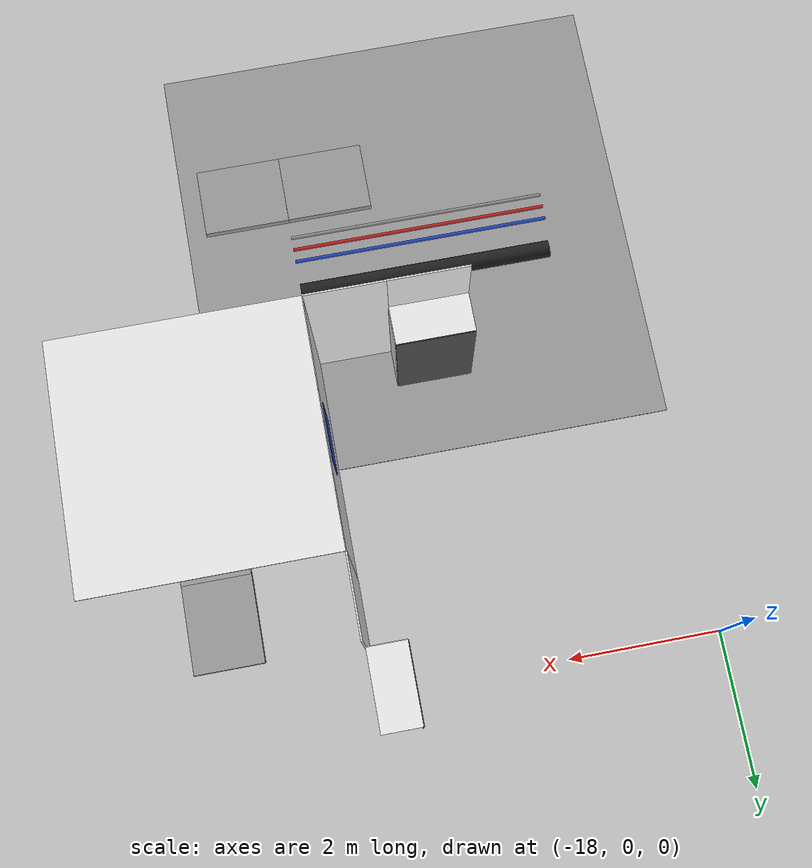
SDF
<sdf version="1.6">
 <world name="default">
  <model name="ceiling_1_-4_0_1_3">
   <pose>-12.0 -1.0 2.55 0.0 0.0 3.14</pose>
   <link name="link_1">
    <visual name="visual">
     <geometry><box><size>0.8 1 0.1</size></box></geometry>
     <material>
      <script><uri>file://media/materials/scripts/gazebo.material</uri><name>Gazebo/Grey</name></script>
     </material>
    </visual>
    <collision name="collision"><geometry><box><size>0.8 1 0.1</size></box></geometry></collision>
   </link>
   <static>1</static>
  </model>
  <model name="wall_front_front_right_-4_0_0_3">
   <static>1</static>
   <pose>-13.5 -1.0 1.5 0.0 0.0 1.57</pose>
   <link name="link">
    <collision name="collision"><geometry><box><size>1.0 0.02 3.0</size></box></geometry></collision>
    <visual name="visual">
     <material>
      <script><name>Gazebo/White</name><uri>file://media/materials/scripts/gazebo.material</uri></script>
     </material>
     <geometry><box><size>1.0 0.02 3.0</size></box></geometry>
    </visual>
   </link>
  </model>
  <model name="wall_front_inside_back_-4_0_0_3">
   <static>1</static>
   <pose>-14.0 0.0 1.0 0.0 0.0 1.57</pose>
   <link name="link">
    <collision name="collision"><geometry><box><size>1 0.02 2</size></box></geometry></collision>
    <visual name="visual">
     <material>
      <script><name>Gazebo/DarkGrey</name><uri>file://media/materials/scripts/gazebo.material</uri></script>
     </material>
     <geometry><box><size>1 0.02 2</size></box></geometry>
    </visual>
   </link>
  </model>
  <model name="wall_front_inside_left_-4_0_0_3">
   <static>1</static>
   <pose>-13.75 -0.5 1.0 0.0 0.0 3.14</pose>
   <link name="link">
    <collision name="collision"><geometry><box><size>0.5 0.02 2</size></box></geometry></collision>
    <visual name="visual">
     <material>
      <script><name>Gazebo/White</name><uri>file://media/materials/scripts/gazebo.material</uri></script>
     </material>
     <geometry><box><size>0.5 0.02 2</size></box></geometry>
    </visual>
   </link>
  </model>
  <model name="wall_front_inside_top_-4_0_0_3">
   <static>1</static>
   <pose>-13.75 0.0 2.0 1.57 0.0 1.57</pose>
   <link name="link">
    <collision name="collision"><geometry><box><size>1 0.02 0.5</size></box></geometry></collision>
    <visual name="visual">
     <material>
      <script><name>Gazebo/White</name><uri>file://media/materials/scripts/gazebo.material</uri></script>
     </material>
     <geometry><box><size>1 0.02 0.5</size></box></geometry>
    </visual>
   </link>
  </model>
  <model name="wall_right_-4_-1_0_1">
   <static>1</static>
   <pose>-13.5 -3.0 1.5 0.0 0.0 4.71</pose>
   <link name="link">
    <collision name="collision"><geometry><box><size>3.0 0.02 3.0</size></box></geometry></collision>
    <visual name="visual">
     <material>
      <script><name>Gazebo/White</name><uri>file://media/materials/scripts/gazebo.material</uri></script>
     </material>
     <geometry><box><size>3.0 0.02 3.0</size></box></geometry>
    </visual>
   </link>
  </model>
  <model name="wall_top_-4_-1_0_1">
   <static>1</static>
   <pose>-12.0 -3.0 3.0 1.57 0.0 3.14</pose>
   <link name="link">
    <collision name="collision"><geometry><box><size>3.0 0.02 3.0</size></box></geometry></collision>
    <visual name="visual">
     <material>
      <script><name>Gazebo/White</name><uri>file://media/materials/scripts/gazebo.material</uri></script>
     </material>
     <geometry><box><size>3.0 0.02 3.0</size></box></geometry>
    </visual>
   </link>
  </model>
  <model name="ceiling_1_-4_-1_0_1">
   <pose>-12.0 -3.0 2.55 0.0 0.0 3.14</pose>
   <link name="link_1">
    <visual name="visual">
     <geometry><box><size>0.8 1 0.1</size></box></geometry>
     <material>
      <script><uri>file://media/materials/scripts/gazebo.material</uri><name>Gazebo/Grey</name></script>
     </material>
    </visual>
    <collision name="collision"><geometry><box><size>0.8 1 0.1</size></box></geometry></collision>
   </link>
   <static>1</static>
  </model>
  <model name="ceiling_1_-4_-1_1_1">
   <pose>-12.0 -2.0 2.55 0.0 0.0 3.14</pose>
   <link name="link_1">
    <visual name="visual">
     <geometry><box><size>0.8 1 0.1</size></box></geometry>
     <material>
      <script><uri>file://media/materials/scripts/gazebo.material</uri><name>Gazebo/Grey</name></script>
     </material>
    </visual>
    <collision name="collision"><geometry><box><size>0.8 1 0.1</size></box></geometry></collision>
   </link>
   <static>1</static>
  </model>
  <model name="panel_-4_-1_0_1">
   <static>1</static>
   <pose>-13.5 -3.0 1.95 0.0 0.0 3.14</pose>
   <link name="link">
    <collision name="collision"><geometry><box><size>0.04 0.7 1</size></box></geometry></collision>
    <visual name="visual">
     <material>
      <script><name>Gazebo/Blue</name><uri>file://media/materials/scripts/gazebo.material</uri></script>
     </material>
     <geometry><box><size>0.04 0.7 1</size></box></geometry>
    </visual>
   </link>
  </model>
  <model name="ceiling_1_-4_-2_1_2">
   <pose>-13.0 -6.0 2.55 0.0 0.0 4.71</pose>
   <link name="link_1">
    <visual name="visual">
     <geometry><box><size>0.8 1 0.1</size></box></geometry>
     <material>
      <script><uri>file://media/materials/scripts/gazebo.material</uri><name>Gazebo/Grey</name></script>
     </material>
    </visual>
    <collision name="collision"><geometry><box><size>0.8 1 0.1</size></box></geometry></collision>
   </link>
   <static>1</static>
  </model>
  <model name="ceiling_1_-5_-2_1_1">
   <pose>-14.0 -6.0 2.55 0.0 0.0 1.57</pose>
   <link name="link_1">
    <visual name="visual">
     <geometry><box><size>0.8 1 0.1</size></box></geometry>
     <material>
      <script><uri>file://media/materials/scripts/gazebo.material</uri><name>Gazebo/Grey</name></script>
     </material>
    </visual>
    <collision name="collision"><geometry><box><size>0.8 1 0.1</size></box></geometry></collision>
   </link>
   <static>1</static>
  </model>
  <model name="black_pipe_right_-5_-2_0_1">
   <static>1</static>
   <pose>-15.0 -6.0 2.76 0.0 0.0 1.57</pose>
   <link name="link_0">
    <visual name="visual">
     <pose>1.3 0 -0.25 1.57 0 0</pose>
     <geometry><cylinder><radius>0.1</radius><length>3.0</length></cylinder></geometry>
     <material>
      <script><uri>file://media/materials/scripts/gazebo.material</uri><name>Gazebo/Black</name></script>
     </material>
    </visual>
    <collision name="collision">
     <pose>1.3 0 -0.25 1.57 0 0</pose>
     <geometry><cylinder><radius>0.1</radius><length>3.0</length></cylinder></geometry>
    </collision>
   </link>
  </model>
  <model name="grey_pipe_right_-5_-2_0_1">
   <static>1</static>
   <pose>-15.0 -6.0 2.76 0.0 0.0 1.57</pose>
   <link name="link_0">
    <visual name="visual">
     <pose>0.7 0 0 1.57 0 0</pose>
     <geometry><cylinder><radius>0.02</radius><length>3.0</length></cylinder></geometry>
     <material>
      <script><uri>file://media/materials/scripts/gazebo.material</uri><name>Gazebo/Grey</name></script>
     </material>
    </visual>
    <collision name="collision">
     <pose>0.7 0 0 1.57 0 0</pose>
     <geometry><cylinder><radius>0.02</radius><length>3.0</length></cylinder></geometry>
    </collision>
   </link>
  </model>
  <model name="red_pipe_right_-5_-2_0_1">
   <static>1</static>
   <pose>-15.0 -6.0 2.76 0.0 0.0 1.57</pose>
   <link name="link_0">
    <visual name="visual">
     <pose>0.85 0 0 1.57 0 0</pose>
     <geometry><cylinder><radius>0.02</radius><length>3.0</length></cylinder></geometry>
     <material>
      <script><uri>file://media/materials/scripts/gazebo.material</uri><name>Gazebo/Red</name></script>
     </material>
    </visual>
    <collision name="collision">
     <pose>0.85 0 0 1.57 0 0</pose>
     <geometry><cylinder><radius>0.02</radius><length>3.0</length></cylinder></geometry>
    </collision>
   </link>
  </model>
  <model name="blue_pipe_right_-5_-2_0_1">
   <static>1</static>
   <pose>-15.0 -6.0 2.76 0.0 0.0 1.57</pose>
   <link name="link_0">
    <visual name="visual">
     <pose>1 0 0 1.57 0 0</pose>
     <geometry><cylinder><radius>0.02</radius><length>3.0</length></cylinder></geometry>
     <material>
      <script><uri>file://media/materials/scripts/gazebo.material</uri><name>Gazebo/Blue</name></script>
     </material>
    </visual>
    <collision name="collision">
     <pose>1 0 0 1.57 0 0</pose>
     <geometry><cylinder><radius>0.02</radius><length>3.0</length></cylinder></geometry>
    </collision>
   </link>
  </model>
  <model name="wall_right_front_right_-5_-2_0_1">
   <static>1</static>
   <pose>-14.0 -4.5 1.5 0.0 0.0 3.14</pose>
   <link name="link">
    <collision name="collision"><geometry><box><size>1.0 0.02 3.0</size></box></geometry></collision>
    <visual name="visual">
     <material>
      <script><name>Gazebo/White</name><uri>file://media/materials/scripts/gazebo.material</uri></script>
     </material>
     <geometry><box><size>1.0 0.02 3.0</size></box></geometry>
    </visual>
   </link>
  </model>
  <model name="wall_right_front_up_-5_-2_0_1">
   <static>1</static>
   <pose>-15.0 -4.5 2.5 0.0 0.0 3.14</pose>
   <link name="link">
    <collision name="collision"><geometry><box><size>1.0 0.02 1.0</size></box></geometry></collision>
    <visual name="visual">
     <material>
      <script><name>Gazebo/White</name><uri>file://media/materials/scripts/gazebo.material</uri></script>
     </material>
     <geometry><box><size>1.0 0.02 1.0</size></box></geometry>
    </visual>
   </link>
  </model>
  <model name="wall_right_inside_back_-5_-2_0_1">
   <static>1</static>
   <pose>-15.0 -4.0 1.0 0.0 0.0 3.14</pose>
   <link name="link">
    <collision name="collision"><geometry><box><size>1 0.02 2</size></box></geometry></collision>
    <visual name="visual">
     <material>
      <script><name>Gazebo/DarkGrey</name><uri>file://media/materials/scripts/gazebo.material</uri></script>
     </material>
     <geometry><box><size>1 0.02 2</size></box></geometry>
    </visual>
   </link>
  </model>
  <model name="wall_right_inside_right_-5_-2_0_1">
   <static>1</static>
   <pose>-14.5 -4.25 1.0 0.0 0.0 1.57</pose>
   <link name="link">
    <collision name="collision"><geometry><box><size>0.5 0.02 2</size></box></geometry></collision>
    <visual name="visual">
     <material>
      <script><name>Gazebo/White</name><uri>file://media/materials/scripts/gazebo.material</uri></script>
     </material>
     <geometry><box><size>0.5 0.02 2</size></box></geometry>
    </visual>
   </link>
  </model>
  <model name="wall_right_inside_top_-5_-2_0_1">
   <static>1</static>
   <pose>-15.0 -4.25 2.0 1.57 0.0 3.14</pose>
   <link name="link">
    <collision name="collision"><geometry><box><size>1 0.02 0.5</size></box></geometry></collision>
    <visual name="visual">
     <material>
      <script><name>Gazebo/White</name><uri>file://media/materials/scripts/gazebo.material</uri></script>
     </material>
     <geometry><box><size>1 0.02 0.5</size></box></geometry>
    </visual>
   </link>
  </model>
  <model name="wall_bottom_-5_-2_0_1">
   <static>1</static>
   <pose>-15.0 -6.0 0.0 0.0 0.0 1.57</pose>
   <link name="link">
    <collision name="collision"><geometry><box><size>6.0 6.0 0.02</size></box></geometry></collision>
    <visual name="visual">
     <material>
      <script><name>Gazebo/Grey</name><uri>file://media/materials/scripts/gazebo.material</uri></script>
     </material>
     <geometry><box><size>6.0 6.0 0.02</size></box></geometry>
    </visual>
   </link>
  </model>
 </world>
</sdf>
